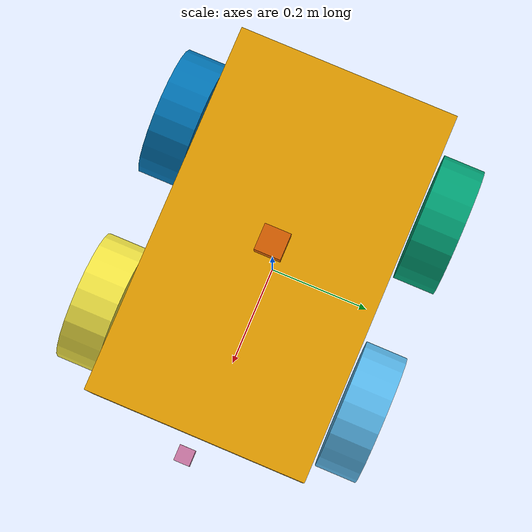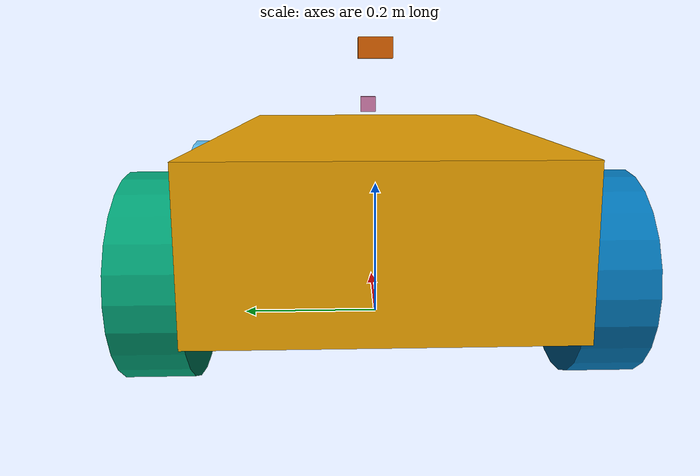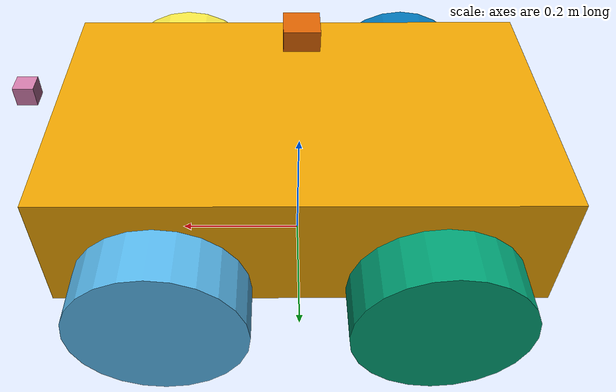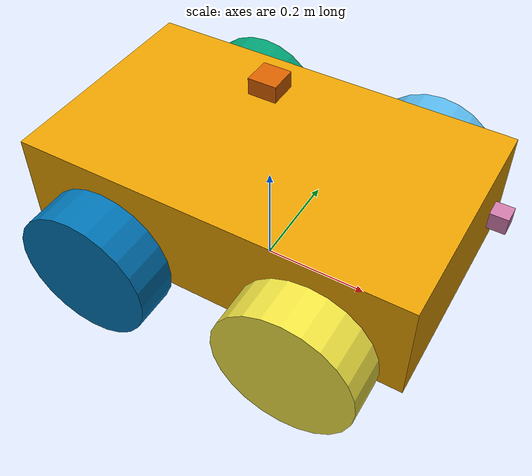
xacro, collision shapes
<?xml version="1.0"?>
<!-- Revolute-Revolute Manipulator -->
<robot name="autolabor_pro1" xmlns:xacro="http://www.ros.org/wiki/xacro">

  <xacro:property name="PI" value="3.1415926535897931"/>
  <xacro:property name="shaft_spacing_f" value="0.19649" />
  <xacro:property name="shaft_spacing_b" value="0.18988" />
  <xacro:property name="wheel_spacing_2" value="0.2643" />
  <xacro:property name="height" value="0.11913" />

  <xacro:include filename="$(find autolabor_description)/urdf/autolabor_pro1.gazebo" />

  <!-- Base Link -->
  <link name="base_link">
    <collision>
      <origin xyz="0 0 0.18288" rpy="0 0 0"/>
      <geometry>
        <box size="0.7248 0.4302 0.195"/>
      </geometry>
    </collision>

    <visual>
      <origin xyz="0 0 0" rpy="0 0 0"/>
      <geometry>
        <mesh filename="package://autolabor_description/meshes/pro1_body_color.dae"/>
      </geometry>
    </visual>

    <inertial>
      <origin xyz="0 0 0" rpy="0 0 0"/>
      <mass value="39"/>
      <inertia ixx="0.7245" ixy="0.0" ixz="0.0" iyy="1.80" iyz="0.0" izz="2.2857"/>
    </inertial>
  </link>

  <link name="left_front_wheel">
    <collision>
      <origin xyz="0 0 0" rpy="1.5708 0 0"/>
      <geometry>
        <cylinder length="0.0822" radius="0.127"/>
      </geometry>
    </collision>

    <visual>
      <origin xyz="0 0 0" rpy="0 0 0"/>
      <geometry>
        <mesh filename="package://autolabor_description/meshes/pro1_wheel_color.dae"/>
      </geometry>
    </visual>

    <inertial>
      <origin xyz="0 0 0" rpy="0 0 0"/>
      <mass value="1.5"/>
      <inertia ixx="0.013" ixy="0.0" ixz="0.0" iyy="0.0074" iyz="0.0" izz="0.0074"/>
    </inertial>
  </link>

  <link name="left_back_wheel">
    <collision>
      <origin xyz="0 0 0" rpy="1.5708 0 0"/>
      <geometry>
        <cylinder length="0.0822" radius="0.127"/>
      </geometry>
    </collision>

    <visual>
      <origin xyz="0 0 0" rpy="0 0 0"/>
      <geometry>
        <mesh filename="package://autolabor_description/meshes/pro1_wheel_color.dae"/>
      </geometry>
    </visual>

    <inertial>
      <origin xyz="0 0 0" rpy="0 0 0"/>
      <mass value="1.5"/>
      <inertia ixx="0.013" ixy="0.0" ixz="0.0" iyy="0.0074" iyz="0.0" izz="0.0074"/>
    </inertial>
  </link>

  <link name="right_front_wheel">
    <collision>
      <origin xyz="0 0 0" rpy="1.5708 0 0"/>
      <geometry>
        <cylinder length="0.0822" radius="0.127"/>
      </geometry>
    </collision>

    <visual>
      <origin xyz="0 0 0" rpy="0 0 ${PI}"/>
      <geometry>
        <mesh filename="package://autolabor_description/meshes/pro1_wheel_color.dae"/>
      </geometry>
    </visual>

    <inertial>
      <origin xyz="0 0 0" rpy="0 0 ${PI}"/>
      <mass value="1.5"/>
      <inertia ixx="0.013" ixy="0.0" ixz="0.0" iyy="0.0074" iyz="0.0" izz="0.0074"/>
    </inertial>
  </link>

  <link name="right_back_wheel">
    <collision>
      <origin xyz="0 0 0" rpy="1.5708 0 0"/>
      <geometry>
        <cylinder length="0.0822" radius="0.127"/>
      </geometry>
    </collision>

    <visual>
      <origin xyz="0 0 0" rpy="0 0 ${PI}"/>
      <geometry>
        <mesh filename="package://autolabor_description/meshes/pro1_wheel_color.dae"/>
      </geometry>
    </visual>

    <inertial>
      <origin xyz="0 0 0" rpy="0 0 ${PI}"/>
      <mass value="1.5"/>
      <inertia ixx="0.013" ixy="0.0" ixz="0.0" iyy="0.0074" iyz="0.0" izz="0.0074"/>
    </inertial>
  </link>

  <link name="imu_link">
    <collision>
      <origin xyz="0 0 0" rpy="0 0 0"/>
      <geometry>
        <box size="0.05 0.05 0.03"/>
      </geometry>
    </collision>

    <visual>
      <origin xyz="0 0 0" rpy="0 0 0"/>
      <geometry>
        <box size="0.05 0.05 0.03"/>
      </geometry>
    </visual>

    <inertial>
      <origin xyz="0 0 0" rpy="0 0 0"/>
      <mass value="0.1"/>
      <inertia ixx="0.013" ixy="0.0" ixz="0.0" iyy="0.0074" iyz="0.0" izz="0.0074"/>
    </inertial>
  </link>

  <link name="lider_1_link">
    <collision>
      <origin xyz="0 0 0" rpy="0 0 0"/>
      <geometry>
        <box size="0.03 0.03 0.03"/>
      </geometry>
    </collision>

    <visual>
      <origin xyz="0 0 0" rpy="0 0 0"/>
      <geometry>
        <box size="0.03 0.03 0.03"/>
      </geometry>
    </visual>

    <inertial>
      <origin xyz="0 0 0" rpy="0 0 0"/>
      <mass value="0.1"/>
      <inertia ixx="0.013" ixy="0.0" ixz="0.0" iyy="0.0074" iyz="0.0" izz="0.0074"/>
    </inertial>
  </link>

  <joint name="joint_left_front" type="continuous">
    <parent link="base_link"/>
    <child link="left_front_wheel"/>
    <origin xyz="${shaft_spacing_f} ${wheel_spacing_2} ${height}" rpy="0 0 0"/>
    <axis xyz="0 1 0"/>
    <dynamics damping="0.7"/>
  </joint>

  <joint name="joint_left_back" type="continuous">
    <parent link="base_link"/>
    <child link="left_back_wheel"/>
    <origin xyz="-${shaft_spacing_b} ${wheel_spacing_2} ${height}" rpy="0 0 0"/>
    <axis xyz="0 1 0"/>
    <dynamics damping="0.7"/>
  </joint>

  <joint name="joint_right_front" type="continuous">
    <parent link="base_link"/>
    <child link="right_front_wheel"/>
    <origin xyz="${shaft_spacing_f} -${wheel_spacing_2} ${height}" rpy="0 0 0"/>
    <axis xyz="0 1 0"/>
    <dynamics damping="0.7"/>
  </joint>

  <joint name="joint_right_back" type="continuous">
    <parent link="base_link"/>
    <child link="right_back_wheel"/>
    <origin xyz="-${shaft_spacing_b} -${wheel_spacing_2} ${height}" rpy="0 0 0"/>
    <axis xyz="0 1 0"/>
    <dynamics damping="0.7"/>
  </joint>

  <!--joint name="joint_imu" type="continuous"-->
  <joint name="joint_imu" type="fixed">
    <parent link="base_link"/>
    <child link="imu_link"/>
    <origin xyz="0 0 0.4" rpy="0 0 0"/>
  </joint>

  <joint name="joint_lidar_1" type="fixed">
    <parent link="base_link"/>
    <child link="lider_1_link"/>
    <origin xyz="0.4 0.0 0.3" rpy="0 0 0"/>
  </joint>

</robot>
